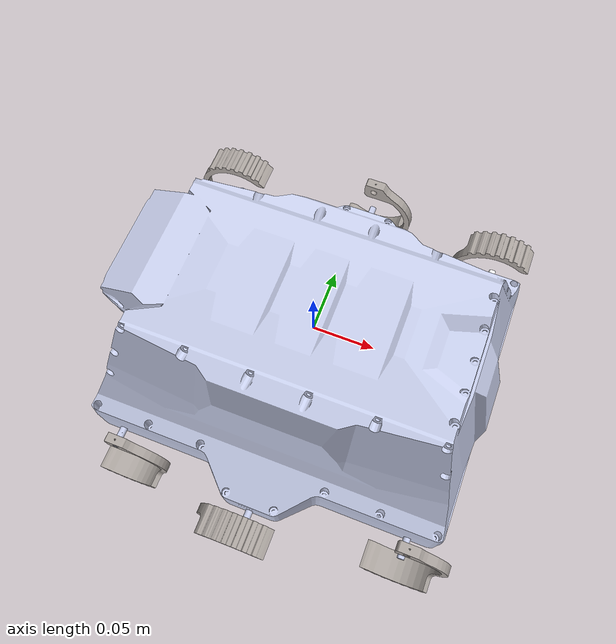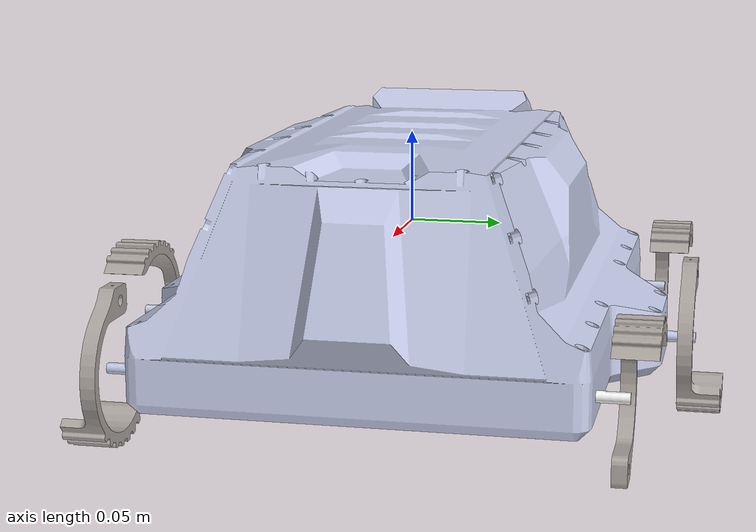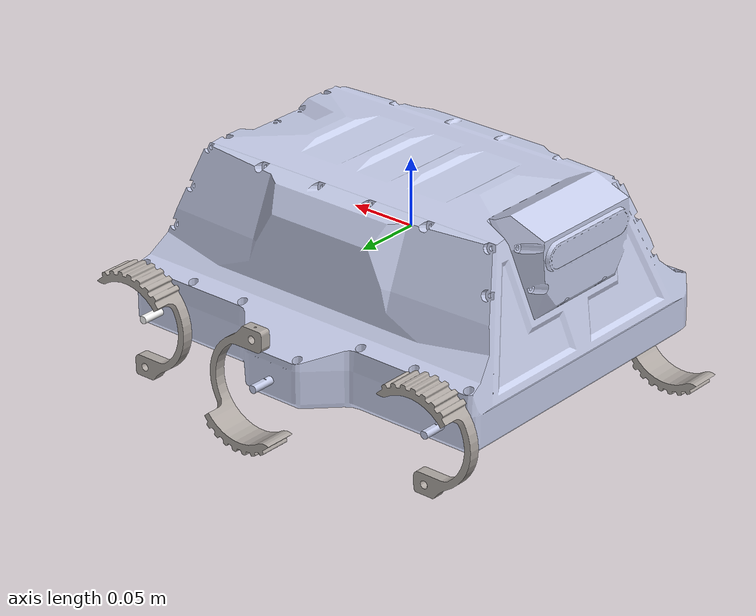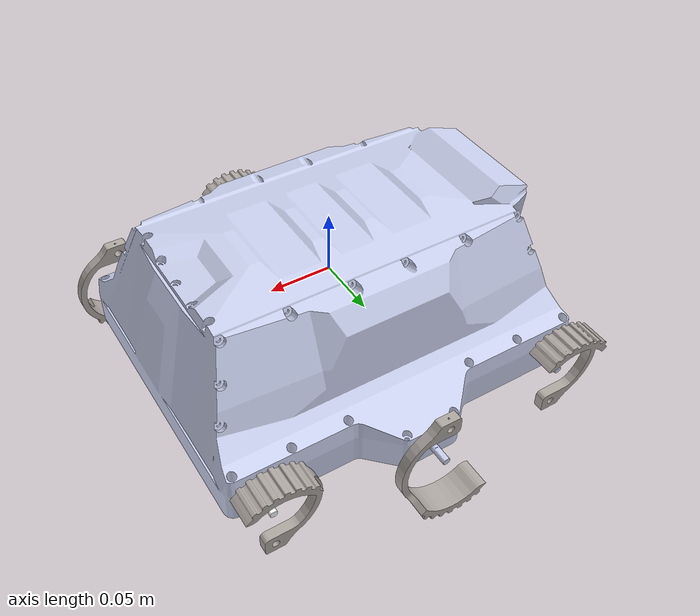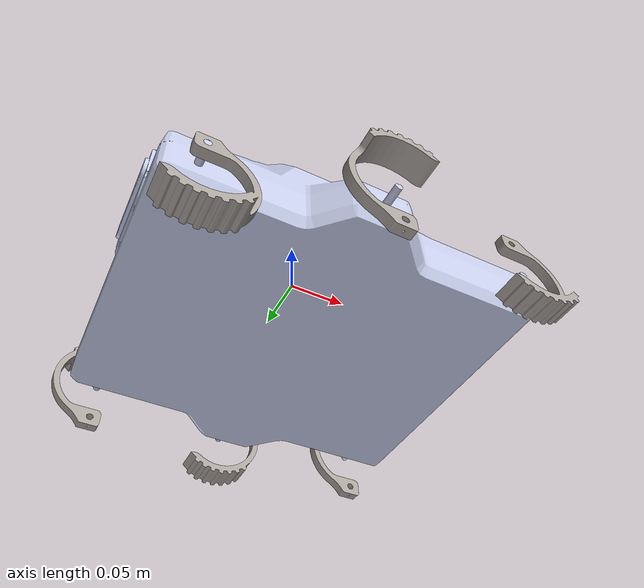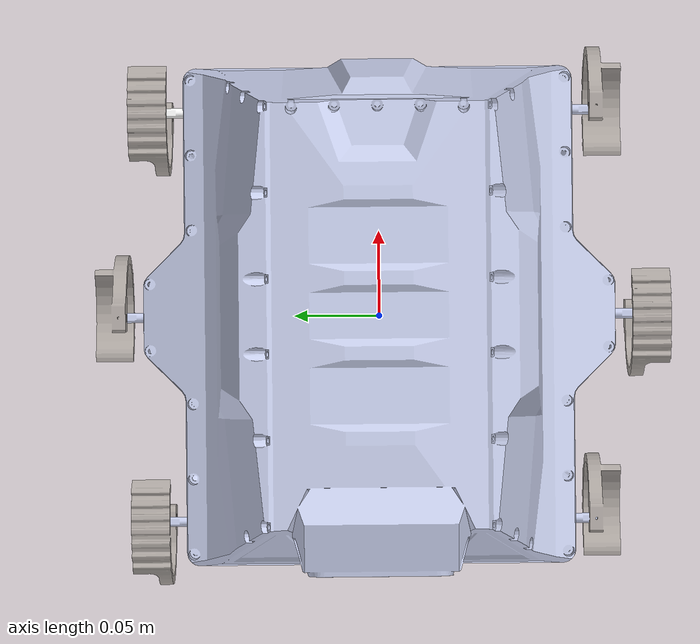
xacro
<?xml version="1.0"?>
<robot xmlns:xacro="http://www.ros.org/wiki/xacro" >

  <link
    name="tito">
    <inertial>
      <origin
        xyz="-0.014057 -2.8025E-05 -0.034735"
        rpy="0 0 0" />
      <mass value="2" />
      <inertia
        ixx="0.0037485"
        ixy="6.2347E-07"
        ixz="-4.228E-06"
        iyy="0.005373"
        iyz="2.0054E-08"
        izz="0.0085891" />
    </inertial>
    <visual>
      <origin
        xyz="0 0 0"
        rpy="0 0 0" />
      <geometry>
        <mesh filename="file:///home/benjamin/tito_ws/src/tito_bringup/meshes/tito.STL" />
      </geometry>
      <material
        name="">
        <color
          rgba="0.79216 0.81961 0.93333 1" />
      </material>
    </visual>
    <collision>
      <origin
        xyz="0 0 0"
        rpy="0 0 0" />
      <geometry>
        <mesh
          filename="file:///home/benjamin/tito_ws/src/tito_bringup/meshes/tito.STL" />
      </geometry>
    </collision>
  </link>
  <link    name="engine1">
    <inertial>
      <origin
        xyz="-0.049497 -1.7523E-05 -3.3692E-07"
        rpy="0 0 0" />
      <mass
        value="0.15" />
      <inertia
        ixx="1.0791E-06"
        ixy="3.2383E-10"
        ixz="-5.8793E-11"
        iyy="1.356E-06"
        iyz="-2.9706E-11"
        izz="1.3576E-06" />
    </inertial>
    <visual>
      <origin
        xyz="0 0 0"
        rpy="0 0 0" />
      <geometry>
        <mesh
          filename="file:///home/benjamin/tito_ws/src/tito_bringup/meshes/engine1.STL" />
      </geometry>
      <material
        name="">
        <color
          rgba="0.79216 0.81961 0.93333 1" />
      </material>
    </visual>
  </link>
  <joint    name="engine1_joint"    type="fixed">
    <origin
      xyz="-0.124 -0.032888 -0.059985"
      rpy="-1.5708 0 1.5708" />
    <parent
      link="tito" />
    <child
      link="engine1" />
    <axis
      xyz="0 0 0" />
  </joint>
  <link    name="leg1">
    <inertial>
      <origin
        xyz="-0.0080118 -0.012692 -0.00072115"
        rpy="0 3.14 3.14" />
      <mass
        value="0.06" />
      <inertia
        ixx="5.0695E-05"
        ixy="6.1207E-06"
        ixz="1.4584E-06"
        iyy="1.9614E-05"
        iyz="-5.585E-06"
        izz="6.5188E-05" />
    </inertial>
    <visual>
      <origin
        xyz="0 0 0"
        rpy="0 3.14 3.14" />
      <geometry>
        <mesh
          filename="file:///home/benjamin/tito_ws/src/tito_bringup/meshes/leg1_new.stl" />
      </geometry>
      <material
        name="">
        <color
          rgba="0.68627 0.65882 0.63922 1" />
      </material>
    </visual>
    <collision>
      <origin
        xyz="0 0 0"
        rpy="0 3.14 3.14" />
      <geometry>
        <mesh
          filename="file:///home/benjamin/tito_ws/src/tito_bringup/meshes/leg1_new.stl" />
      </geometry>
    </collision>
  </link>
  <joint name="leg1_joint" type="continuous">
    <origin
      xyz="-0.10151 0 0"
      rpy="0 -1.5708 0" />
    <parent
      link="engine1" />
    <child
      link="leg1" />
    <axis
      xyz="0 0 1" />
    <limit
      lower="-15"
      upper="15"
      effort="1000.0"
      velocity="30" />
    <dynamics damping="0.0" friction="0.0"/>
  </joint>
  <link    name="engine2">
    <inertial>
      <origin
        xyz="-0.049497 -1.7523E-05 -3.3692E-07"
        rpy="0 0 0" />
      <mass
        value="0.15" />
      <inertia
        ixx="1.0791E-06"
        ixy="3.2383E-10"
        ixz="-5.8793E-11"
        iyy="1.356E-06"
        iyz="-2.9706E-11"
        izz="1.3576E-06" />
    </inertial>
    <visual>
      <origin
        xyz="0 0 0"
        rpy="0 0 0" />
      <geometry>
        <mesh
          filename="file:///home/benjamin/tito_ws/src/tito_bringup/meshes/engine2.STL" />
      </geometry>
      <material
        name="">
        <color
          rgba="0.79216 0.81961 0.93333 1" />
      </material>
    </visual>
  </link>
  <joint    name="engine2_joint"    type="fixed">
    <origin
      xyz="0 -0.057888 -0.059985"
      rpy="-1.5708 0 1.5708" />
    <parent
      link="tito" />
    <child
      link="engine2" />
    <axis
      xyz="0 0 0" />
  </joint>
  <link    name="leg2">
    <inertial>
      <origin
        xyz="-0.0080118 -0.012692 -0.00072115"
        rpy="0 3.14 3.14" />
      <mass
        value="0.06" />
      <inertia
        ixx="5.0695E-05"
        ixy="6.1207E-06"
        ixz="1.4584E-06"
        iyy="1.9614E-05"
        iyz="-5.585E-06"
        izz="6.5188E-05" />
    </inertial>
    <visual>
      <origin
        xyz="0 0 0"
        rpy="0 3.14 3.14" />
      <geometry>
        <mesh
          filename="file:///home/benjamin/tito_ws/src/tito_bringup/meshes/leg2.stl" />
      </geometry>
      <material
        name="">
        <color
          rgba="0.68627 0.65882 0.63922 1" />
      </material>
    </visual>
    <collision>
      <origin
        xyz="0 0 0"
        rpy="0 3.14 3.14" />
      <geometry>
        <mesh
          filename="file:///home/benjamin/tito_ws/src/tito_bringup/meshes/leg2.stl" />
      </geometry>
    </collision>
  </link>
  <joint    name="leg2_joint"    type="continuous">
    <mimic joint="leg1_joint"/>
    <origin
      xyz="-0.10151 0 0"
      rpy="0 1.57 3.14" />
    <parent
      link="engine2" />
    <child
      link="leg2" />
    <axis
      xyz="0 0 1" />
    <limit
      lower="-15"
      upper="15"
      effort="1000.0"
      velocity="30" />
    <dynamics damping="0.0" friction="0.0"/>
  </joint>
  <link    name="engine3">
    <inertial>
      <origin
        xyz="-0.049497 -1.7523E-05 -3.3692E-07"
        rpy="0 0 0" />
      <mass
        value="0.15" />
      <inertia
        ixx="1.0791E-06"
        ixy="3.2383E-10"
        ixz="-5.8793E-11"
        iyy="1.356E-06"
        iyz="-2.9706E-11"
        izz="1.3576E-06" />
    </inertial>
    <visual>
      <origin
        xyz="0 0 0"
        rpy="0 0 0" />
      <geometry>
        <mesh
          filename="file:///home/benjamin/tito_ws/src/tito_bringup/meshes/engine3.STL" />
      </geometry>
      <material
        name="">
        <color
          rgba="0.79216 0.81961 0.93333 1" />
      </material>
    </visual>
  </link>
  <joint    name="engine3_joint"    type="fixed">
    <origin
      xyz="0.124 -0.032888 -0.059985"
      rpy="-1.5708 0 1.5708" />
    <parent
      link="tito" />
    <child
      link="engine3" />
    <axis
      xyz="0 0 0" />
  </joint>
  <link    name="leg3">
    <inertial>
      <origin
        xyz="-0.0080118 -0.012692 -0.00072115"
        rpy="0 3.14 3.14" />
      <mass
        value="0.06" />
      <inertia
        ixx="5.0695E-05"
        ixy="6.1207E-06"
        ixz="1.4584E-06"
        iyy="1.9614E-05"
        iyz="-5.585E-06"
        izz="6.5188E-05" />
    </inertial>
    <visual>
      <origin
        xyz="0 0 0"
        rpy="0 3.14 3.14" />
      <geometry>
        <mesh
          filename="file:///home/benjamin/tito_ws/src/tito_bringup/meshes/leg3.stl" />
      </geometry>
      <material
        name="">
        <color
          rgba="0.68627 0.65882 0.63922 1" />
      </material>
    </visual>
    <collision>
      <origin
        xyz="0 0 0"
        rpy="0 3.14 3.14" />
      <geometry>
        <mesh
          filename="file:///home/benjamin/tito_ws/src/tito_bringup/meshes/leg3.stl" />
      </geometry>
    </collision>
  </link>
  <joint    name="leg3_joint"    type="continuous">
    <mimic joint="leg1_joint"/>
    <origin
      xyz="-0.10151237169951 0 0"
      rpy="0 -1.5707963267949 0" />
    <parent
      link="engine3" />
    <child
      link="leg3" />
    <axis
      xyz="0 0 1" />
    <limit
      lower="-15"
      upper="15"
      effort="1000.0"
      velocity="30" />
  </joint>
  <link    name="engine4">
    <inertial>
      <origin
        xyz="-0.049497 1.7523E-05 3.3692E-07"
        rpy="0 0 0" />
      <mass
        value="0.15" />
      <inertia
        ixx="1.0791E-06"
        ixy="-3.2383E-10"
        ixz="5.8793E-11"
        iyy="1.356E-06"
        iyz="-2.9706E-11"
        izz="1.3576E-06" />
    </inertial>
    <visual>
      <origin
        xyz="0 0 0"
        rpy="0 0 0" />
      <geometry>
        <mesh
          filename="file:///home/benjamin/tito_ws/src/tito_bringup/meshes/engine4.STL" />
      </geometry>
      <material
        name="">
        <color
          rgba="0.79216 0.81961 0.93333 1" />
      </material>
    </visual>
  </link>
  <joint    name="engine4_joint"    type="fixed">
    <origin
      xyz="-0.124 0.032888 -0.059985"
      rpy="1.5708 0 -1.5708" />
    <parent
      link="tito" />
    <child
      link="engine4" />
    <axis
      xyz="0 0 0" />
  </joint>
  <link    name="leg4">
    <inertial>
      <origin
        xyz="-0.0080118 -0.012692 0.016721"
        rpy="0 3.14 3.14" />
      <mass
        value="0.06" />
      <inertia
        ixx="5.0695E-05"
        ixy="6.1207E-06"
        ixz="-1.4584E-06"
        iyy="1.9614E-05"
        iyz="5.585E-06"
        izz="6.5188E-05" />
    </inertial>
    <visual>
      <origin
        xyz="0 0 0"
        rpy="0 3.14 3.14" />
      <geometry>
        <mesh
          filename="file:///home/benjamin/tito_ws/src/tito_bringup/meshes/leg4.stl" />
      </geometry>
      <material
        name="">
        <color
          rgba="0.68627 0.65882 0.63922 1" />
      </material>
    </visual>
    <collision>
      <origin
        xyz="0 0 0"
        rpy="0 3.14 3.14" />
      <geometry>
        <mesh
          filename="file:///home/benjamin/tito_ws/src/tito_bringup/meshes/leg4.stl" />
      </geometry>
    </collision>
  </link>
  <joint    name="leg4_joint"    type="continuous">
    <mimic joint="leg2_joint"/>
    <origin
      xyz="-0.0855123716995093 0 0"
      rpy="0 1.57 0" />
    <parent
      link="engine4" />
    <child
      link="leg4" />
    <axis
      xyz="0 0 -1" />
    <limit
      lower="-15"
      upper="15"
      effort="1000.0"
      velocity="30" />
  </joint>
  <link    name="engine5">
    <inertial>
      <origin
        xyz="-0.049497 1.7523E-05 3.3692E-07"
        rpy="0 0 0" />
      <mass
        value="0.15" />
      <inertia
        ixx="1.0791E-06"
        ixy="-3.2383E-10"
        ixz="5.8793E-11"
        iyy="1.356E-06"
        iyz="-2.9706E-11"
        izz="1.3576E-06" />
    </inertial>
    <visual>
      <origin
        xyz="0 0 0"
        rpy="0 0 0" />
      <geometry>
        <mesh
          filename="file:///home/benjamin/tito_ws/src/tito_bringup/meshes/engine5.STL" />
      </geometry>
      <material
        name="">
        <color
          rgba="0.79216 0.81961 0.93333 1" />
      </material>
    </visual>
  </link>
  <joint    name="engine5_joint"    type="fixed">
    <origin
      xyz="0 0.057888 -0.059985"
      rpy="1.5708 0 -1.5708" />
    <parent
      link="tito" />
    <child
      link="engine5" />
    <axis
      xyz="0 0 0" />
  </joint>
  <link    name="leg5">
    <inertial>
      <origin
        xyz="-0.0080118 -0.012692 0.016721"
        rpy="0 3.14 3.14" />
      <mass
        value="0.06" />
      <inertia
        ixx="5.0695E-05"
        ixy="6.1207E-06"
        ixz="-1.4584E-06"
        iyy="1.9614E-05"
        iyz="5.585E-06"
        izz="6.5188E-05" />
    </inertial>
    <visual>
      <origin
        xyz="0 0 0"
        rpy="0 3.14 3.14" />
      <geometry>
        <mesh
          filename="file:///home/benjamin/tito_ws/src/tito_bringup/meshes/leg5.stl" />
      </geometry>
      <material
        name="">
        <color
          rgba="0.68627 0.65882 0.63922 1" />
      </material>
    </visual>
    <collision>
      <origin
        xyz="0 0 0"
        rpy="0 3.14 3.14" />
      <geometry>
        <mesh
          filename="file:///home/benjamin/tito_ws/src/tito_bringup/meshes/leg5.stl" />
      </geometry>
    </collision>
  </link>
  <joint    name="leg5_joint"    type="continuous">
    <mimic joint="leg1_joint"/>
    <origin
      xyz="-0.0855123716995093 0 0"
      rpy="3.14159265358979 -1.5707963267949 0" />
    <parent
      link="engine5" />
    <child
      link="leg5" />
    <axis
      xyz="0 0 -1" />
    <limit
      lower="-15"
      upper="15"
      effort="1000.0"
      velocity="30" />
  </joint>
  <link    name="engine6">
    <inertial>
      <origin
        xyz="0 0 0"
        rpy="0 0 0" />
      <mass
        value="0.15" />
      <inertia
        ixx="0"
        ixy="0"
        ixz="0"
        iyy="0"
        iyz="0"
        izz="0" />
    </inertial>
    <visual>
      <origin
        xyz="0 0 0"
        rpy="0 0 0" />
      <geometry>
        <mesh
          filename="file:///home/benjamin/tito_ws/src/tito_bringup/meshes/engine6.STL" />
      </geometry>
      <material
        name="">
        <color
          rgba="1 1 1 1" />
      </material>
    </visual>
  </link>
  <joint    name="engine6_joint"    type="fixed">
    <origin
      xyz="0.124 0.0328876283004872 -0.0599846310393008"
      rpy="1.5707963267949 0 -1.5707963267949" />
    <parent
      link="tito" />
    <child
      link="engine6" />
    <axis
      xyz="0 0 0" />
  </joint>
  <link    name="leg6">
    <inertial>
      <origin
        xyz="-0.0080118 -0.012692 0.016721"
        rpy="0 3.14 3.14" />
      <mass
        value="0.06" />
      <inertia
        ixx="5.0695E-05"
        ixy="6.1207E-06"
        ixz="-1.4584E-06"
        iyy="1.9614E-05"
        iyz="5.585E-06"
        izz="6.5188E-05" />
    </inertial>
    <visual>
      <origin
        xyz="0 0 0"
        rpy="0 3.14 3.14" />
      <geometry>
        <mesh
          filename="file:///home/benjamin/tito_ws/src/tito_bringup/meshes/leg6.stl" />
      </geometry>
      <material
        name="">
        <color
          rgba="0.68627 0.65882 0.63922 1" />
      </material>
    </visual>
    <collision>
      <origin
        xyz="0 0 0"
        rpy="0 3.14 3.14" />
      <geometry>
        <mesh
          filename="file:///home/benjamin/tito_ws/src/tito_bringup/meshes/leg6.stl" />
      </geometry>
    </collision>
  </link>
  <joint    name="leg6_joint"
    type="continuous">
    <mimic joint="leg2_joint"/>
    <origin
      xyz="-0.0855123716995093 0 0"
      rpy="0 1.57 0" />
    <parent
      link="engine6" />
    <child
      link="leg6" />
    <axis
      xyz="0 0 -1" />
    <limit
      lower="-15"
      upper="15"
      effort="1000.0"
      velocity="30" />
  </joint>
  <!-- Position Config -->
  <ros2_control name="IgnitionSystem" type="system">
    <hardware>
      <plugin>ign_ros2_control/IgnitionSystem</plugin>
    </hardware>
    <joint name="leg1_joint">
      <command_interface name="velocity">
        <param name="min">-15</param>
        <param name="max">15</param>
      </command_interface>
      <command_interface name="position"/>
      <state_interface name="position"/>
      <state_interface name="velocity"/>
      <state_interface name="effort"/>
    </joint>
    <joint name="leg3_joint">
      <command_interface name="velocity">
        <param name="min">-15</param>
        <param name="max">15</param>
      </command_interface>
      <command_interface name="position"/>
      <state_interface name="position"/>
      <state_interface name="velocity"/>
      <state_interface name="effort"/>
    </joint>
    <joint name="leg5_joint">
      <command_interface name="velocity">
        <param name="min">-15</param>
        <param name="max">15</param>
      </command_interface>
      <command_interface name="position"/>
      <state_interface name="position"/>
      <state_interface name="velocity"/>
      <state_interface name="effort"/>
    </joint>
    <joint name="leg2_joint">
      <command_interface name="velocity">
        <param name="min">-15</param>
        <param name="max">15</param>
      </command_interface>
      <command_interface name="position"/>
      <command_interface name="position"/>
      <state_interface name="position"/>
      <state_interface name="velocity"/>
      <state_interface name="effort"/>
    </joint>
    <joint name="leg4_joint">
      <command_interface name="velocity">
        <param name="min">-15</param>
        <param name="max">15</param>
      </command_interface>
      <command_interface name="position"/>
      <state_interface name="position"/>
      <state_interface name="velocity"/>
      <state_interface name="effort"/>
    </joint>
    <joint name="leg6_joint">
      <command_interface name="velocity">
        <param name="min">-15</param>
        <param name="max">15</param>
      </command_interface>
      <command_interface name="position"/>
      <state_interface name="position"/>
      <state_interface name="velocity"/>
      <state_interface name="effort"/>
    </joint>
  </ros2_control>
  <gazebo>
    <plugin filename="ign_ros2_control-system" name="ign_ros2_control::IgnitionROS2ControlPlugin">
      <parameters>$(find tito_bringup)/config/controller_velocity_every_leg.yaml</parameters>
    </plugin>
  </gazebo>
</robot>
